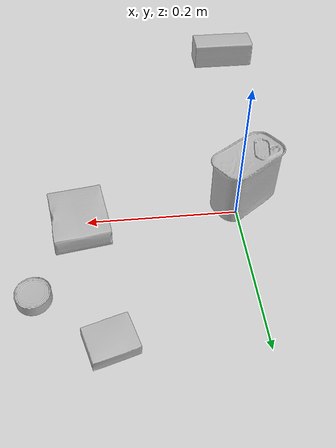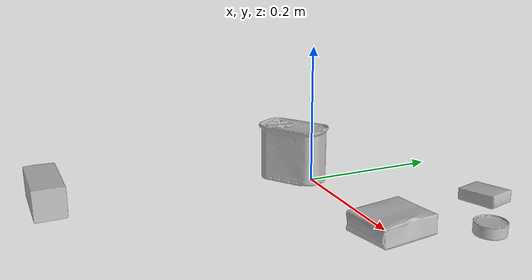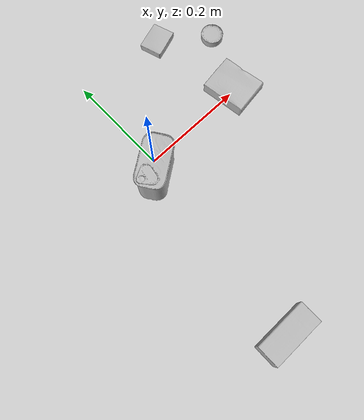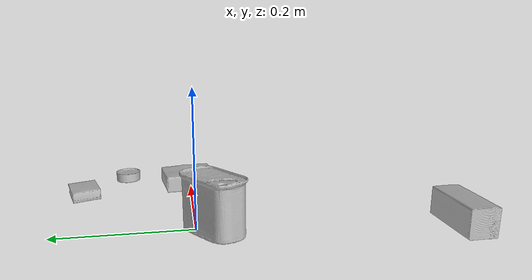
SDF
<sdf version="1.4">
  <world name="default">
    <light name="light1" type="point">
      <pose>0 0 1 0 0 0</pose>
      <diffuse>3 3 3 1</diffuse>
      <specular>3 3 3 1</specular>
    </light>
    <light name="light2" type="point">
      <pose>0 0.5 2 0 0 0</pose>
      <diffuse>1 1 1 1</diffuse>
      <specular>1 1 1 1</specular>
    </light>
    <light name="light3" type="point">
      <pose>0 0.5 2 0 0 0</pose>
      <diffuse>3 3 3 1</diffuse>
      <specular>3 3 3 1</specular>
    </light>
    <scene>
      <ambient>0.7 0.7 0.7</ambient>
    </scene>
    <model name="box1">
      <link name="link_box1">
        <collision name="default">
          <geometry>
            <mesh>
              <uri>model://pudding_box/collision_meshes/collision.obj</uri>
              <scale>0.5 0.5 0.5</scale>
            </mesh>
          </geometry>
          <surface>
            <friction>
              <ode>
                <mu>0.5</mu>
                <mu2>0.5</mu2>
              </ode>
            </friction>
          <contact>
        <ode>
            <max_vel>0</max_vel>
            <min_depth>0.0001</min_depth>
            <kp>1e8</kp>
        </ode>
    </contact></surface>
        </collision>
        <visual name="default">
          <geometry>
            <mesh>
              <uri>model://pudding_box/visual_meshes/visual.dae</uri>
              <scale>0.5 0.5 0.5</scale>
            </mesh>
          </geometry>
        </visual>
        <inertial>
          <mass>0.037190694361925125</mass>
          <pose>0.00024474109522998333 0.00040339428232982755 -0.0002594413817860186 0.005213101817299687 -0.0066037968510836995 0.02007982330137587</pose>
          <inertia>
            <ixx>1.0510541e-05</ixx>
            <iyy>7.071568e-06</iyy>
            <izz>1.552156e-05</izz>
            <ixy>0</ixy>
            <ixz>0</ixz>
            <iyz>0</iyz>
          </inertia>
        </inertial>
      </link>
      <pose>0.1733226627111435 0.17816321551799774 0.009862903505563736 0.022348464384031576 -0.011391790456583476 -1.2716238171495564</pose>
    </model>
    <model name="box2">
      <link name="link_box2">
        <collision name="default">
          <geometry>
            <mesh>
              <uri>model://gelatin_box/collision_meshes/collision.obj</uri>
              <scale>1.0 1.0 1.0</scale>
            </mesh>
          </geometry>
          <surface>
            <friction>
              <ode>
                <mu>0.5</mu>
                <mu2>0.5</mu2>
              </ode>
            </friction>
          <contact>
        <ode>
            <max_vel>0</max_vel>
            <min_depth>0.0001</min_depth>
            <kp>1e8</kp>
        </ode>
    </contact></surface>
        </collision>
        <visual name="default">
          <geometry>
            <mesh>
              <uri>model://gelatin_box/visual_meshes/visual.dae</uri>
              <scale>1.0 1.0 1.0</scale>
            </mesh>
          </geometry>
        </visual>
        <inertial>
          <mass>0.11744645982980728</mass>
          <pose>0.0004319618456065655 0.00011156871914863586 -0.0003640321083366871 -0.001050371865231848 -0.004755818223747806 0.01644056319675078</pose>
          <inertia>
            <ixx>8.290762e-05</ixx>
            <iyy>5.9220478e-05</iyy>
            <izz>0.00012620387</izz>
            <ixy>0</ixy>
            <ixz>0</ixz>
            <iyz>0</iyz>
          </inertia>
        </inertial>
      </link>
      <pose>0.20936904847621918 0.003046696539968252 0.015168317593634129 0.005596297905640883 -0.007303245231888927 0.14532555561310564</pose>
    </model>
    <model name="box3">
      <link name="link_box3">
        <collision name="default">
          <geometry>
            <mesh>
              <uri>model://wood_block/collision_meshes/collision.obj</uri>
              <scale>0.5 0.5 0.5</scale>
            </mesh>
          </geometry>
          <surface>
            <friction>
              <ode>
                <mu>0.5</mu>
                <mu2>0.5</mu2>
              </ode>
            </friction>
          <contact>
        <ode>
            <max_vel>0</max_vel>
            <min_depth>0.0001</min_depth>
            <kp>1e8</kp>
        </ode>
    </contact></surface>
        </collision>
        <visual name="default">
          <geometry>
            <mesh>
              <uri>model://wood_block/visual_meshes/visual.dae</uri>
              <scale>0.5 0.5 0.5</scale>
            </mesh>
          </geometry>
        </visual>
        <inertial>
          <mass>0.2439567744731903</mass>
          <pose>-2.906657982748584e-06 -0.00028540476341731846 0.00013204292918089777 -0.05220841280222248 -0.00519269633387802 -0.006861376952924709</pose>
          <inertia>
            <ixx>8.161277e-05</ixx>
            <iyy>0.00025781477</iyy>
            <izz>0.0002568504</izz>
            <ixy>0</ixy>
            <ixz>0</ixz>
            <iyz>0</iyz>
          </inertia>
        </inertial>
      </link>
      <pose>-0.04821082577109337 -0.3779664635658264 0.0226292721927166 -0.005208535930275806 0.005718660104691853 -3.1366904170527135</pose>
    </model>
    <model name="can1">
      <link name="link_can1">
        <collision name="default">
          <geometry>
            <mesh>
              <uri>model://tuna_fish_can/collision_meshes/collision.obj</uri>
              <scale>0.5 0.5 0.5</scale>
            </mesh>
          </geometry>
          <surface>
            <friction>
              <ode>
                <mu>0.5</mu>
                <mu2>0.5</mu2>
              </ode>
            </friction>
          <contact>
        <ode>
            <max_vel>0</max_vel>
            <min_depth>0.0001</min_depth>
            <kp>1e8</kp>
        </ode>
    </contact></surface>
        </collision>
        <visual name="default">
          <geometry>
            <mesh>
              <uri>model://tuna_fish_can/visual_meshes/visual.dae</uri>
              <scale>0.5 0.5 0.5</scale>
            </mesh>
          </geometry>
        </visual>
        <inertial>
          <mass>0.02880808152258396</mass>
          <pose>-2.036173827946186e-05 -7.256211574713234e-06 -0.0005269025568850338 -0.0017944794030227106 0.00017162104037918286 0.24054189207372795</pose>
          <inertia>
            <ixx>3.894896e-06</ixx>
            <iyy>3.878662e-06</iyy>
            <izz>6.6647226e-06</izz>
            <ixy>0</ixy>
            <ixz>0</ixz>
            <iyz>0</iyz>
          </inertia>
        </inertial>
      </link>
      <pose>0.26097825169563293 0.11313832551240921 0.00851999968290329 -1.087436804486835e-08 1.3003059634146543e-08 1.9576176991058551</pose>
    </model>
    <model name="can2">
      <link name="link_can2">
        <collision name="default">
          <geometry>
            <mesh>
              <uri>model://potted_meat_can/collision_meshes/collision.obj</uri>
              <scale>1.0 1.0 1.0</scale>
            </mesh>
          </geometry>
          <surface>
            <friction>
              <ode>
                <mu>0.5</mu>
                <mu2>0.5</mu2>
              </ode>
            </friction>
          <contact>
        <ode>
            <max_vel>0</max_vel>
            <min_depth>0.0001</min_depth>
            <kp>1e8</kp>
        </ode>
    </contact></surface>
        </collision>
        <visual name="default">
          <geometry>
            <mesh>
              <uri>model://potted_meat_can/visual_meshes/visual.dae</uri>
              <scale>1.0 1.0 1.0</scale>
            </mesh>
          </geometry>
        </visual>
        <inertial>
          <mass>0.21485549211502075</mass>
          <pose>0.00022888135572429746 -5.989110650261864e-05 -0.0006367442547343671 -0.028093358319385277 -0.007232601893117688 0.015406275523281094</pose>
          <inertia>
            <ixx>0.00027638907</ixx>
            <iyy>0.00016792737</iyy>
            <izz>0.00020102048</izz>
            <ixy>0</ixy>
            <ixz>0</ixz>
            <iyz>0</iyz>
          </inertia>
        </inertial>
      </link>
      <pose>-0.014303743839263916 -0.023531323298811913 0.042128004133701324 -4.521941720782114e-08 -4.216668372730163e-07 -0.9777599766383105</pose>
    </model>
  <physics type="ode">
      <max_contacts>50</max_contacts>
      <ode>
        <solver>
          <type>quick</type>
          <iters>75</iters>
        </solver>
        <constraints>
          <contact_max_correcting_vel>0</contact_max_correcting_vel>
          <contact_surface_layer>0</contact_surface_layer>
        </constraints>
      </ode>
    </physics></world>
</sdf>
